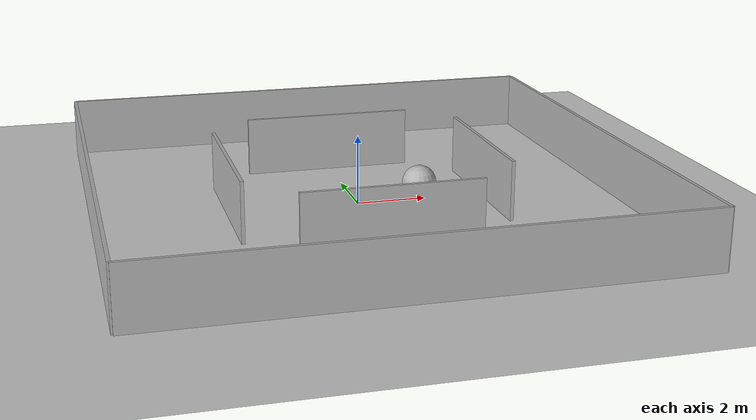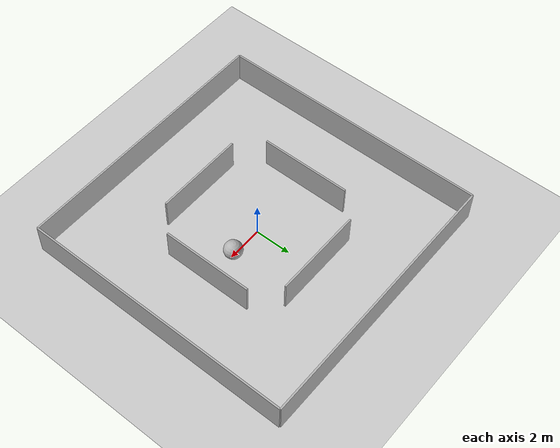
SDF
<?xml version="1.0" ?>
<sdf version='1.9'>
  <world name='default'>
    <physics name='1ms' type='ignored'>
      <max_step_size>0.001</max_step_size>
      <real_time_factor>1</real_time_factor>
      <real_time_update_rate>1000</real_time_update_rate>
    </physics>
    <plugin name='gz::sim::systems::Physics' filename='ignition-gazebo-physics-system'/>
    <plugin name='gz::sim::systems::UserCommands' filename='ignition-gazebo-user-commands-system'/>
    <plugin name='gz::sim::systems::SceneBroadcaster' filename='ignition-gazebo-scene-broadcaster-system'/>
    <plugin name='gz::sim::systems::Contact' filename='ignition-gazebo-contact-system'/>
    <plugin
      filename="gz-sim-sensors-system"
      name="gz::sim::systems::Sensors">
      <render_engine>ogre2</render_engine>
    </plugin>
    <gravity>0 0 -9.8</gravity>
    <magnetic_field>6e-06 2.3e-05 -4.2e-05</magnetic_field>
    <atmosphere type='adiabatic'/>
    <scene>
      <ambient>0.4 0.4 0.4 1</ambient>
      <background>0.7 0.7 0.7 1</background>
      <shadows>true</shadows>
    </scene>
    <model name='ground_plane'>
      <static>true</static>
      <link name='link'>
        <collision name='collision'>
          <geometry>
            <plane>
              <normal>0 0 1</normal>
              <size>100 100</size>
            </plane>
          </geometry>
          <surface>
            <friction>
              <ode/>
            </friction>
            <bounce/>
            <contact/>
          </surface>
        </collision>
        <visual name='visual'>
          <geometry>
            <plane>
              <normal>0 0 1</normal>
              <size>100 100</size>
            </plane>
          </geometry>
          <material>
            <ambient>0.8 0.8 0.8 1</ambient>
            <diffuse>0.8 0.8 0.8 1</diffuse>
            <specular>0.8 0.8 0.8 1</specular>
          </material>
        </visual>
        <pose>0 0 0 0 -0 0</pose>
        <inertial>
          <pose>0 0 0 0 -0 0</pose>
          <mass>1</mass>
          <inertia>
            <ixx>1</ixx>
            <ixy>0</ixy>
            <ixz>0</ixz>
            <iyy>1</iyy>
            <iyz>0</iyz>
            <izz>1</izz>
          </inertia>
        </inertial>
        <enable_wind>false</enable_wind>
      </link>
      <pose>0 0 0 0 -0 0</pose>
      <self_collide>false</self_collide>
    </model>
    <model name='wall1'>
      <pose>-3.75 0 0.5 0 -0 0</pose>
      <link name='box_link'>
        <inertial>
          <inertia>
            <ixx>0.16666</ixx>
            <ixy>0</ixy>
            <ixz>0</ixz>
            <iyy>0.16666</iyy>
            <iyz>0</iyz>
            <izz>0.16666</izz>
          </inertia>
          <mass>1</mass>
          <pose>0 0 0 0 -0 0</pose>
        </inertial>
        <collision name='wall1_collision'>
          <geometry>
            <box>
              <size>0.1 5 2.4</size>
            </box>
          </geometry>
          <surface>
            <friction>
              <ode/>
            </friction>
            <bounce/>
            <contact/>
          </surface>
        </collision>
        <visual name='wall1_visual'>
          <geometry>
            <box>
              <size>0.1 5 2.4</size>
            </box>
          </geometry>
          <material>
            <ambient>0.3 0.3 0.3 1</ambient>
            <diffuse>0.7 0.7 0.7 1</diffuse>
            <specular>1 1 1 1</specular>
          </material>
        </visual>
        <pose>0 0 0 0 -0 0</pose>
        <enable_wind>false</enable_wind>
      </link>
      <static>false</static>
      <self_collide>false</self_collide>
    </model>
    <model name='wall2'>
      <pose>3.75 0 0.5 0 -0 0</pose>
      <link name='box_link'>
        <inertial>
          <inertia>
            <ixx>0.16666</ixx>
            <ixy>0</ixy>
            <ixz>0</ixz>
            <iyy>0.16666</iyy>
            <iyz>0</iyz>
            <izz>0.16666</izz>
          </inertia>
          <mass>1</mass>
          <pose>0 0 0 0 -0 0</pose>
        </inertial>
        <collision name='wall2_collision'>
          <geometry>
            <box>
              <size>0.1 5 2.4</size>
            </box>
          </geometry>
          <surface>
            <friction>
              <ode/>
            </friction>
            <bounce/>
            <contact/>
          </surface>
        </collision>
        <visual name='wall2_visual'>
          <geometry>
            <box>
              <size>0.1 5 2.4</size>
            </box>
          </geometry>
          <material>
            <ambient>0.3 0.3 0.3 1</ambient>
            <diffuse>0.7 0.7 0.7 1</diffuse>
            <specular>1 1 1 1</specular>
          </material>
        </visual>
        <pose>0 0 0 0 -0 0</pose>
        <enable_wind>false</enable_wind>
      </link>
      <static>false</static>
      <self_collide>false</self_collide>
    </model>
    <model name='wall3'>
      <pose>0 -3.75 0.5 0 -0 1.5708</pose>
      <link name='box_link'>
        <inertial>
          <inertia>
            <ixx>0.16666</ixx>
            <ixy>0</ixy>
            <ixz>0</ixz>
            <iyy>0.16666</iyy>
            <iyz>0</iyz>
            <izz>0.16666</izz>
          </inertia>
          <mass>1</mass>
          <pose>0 0 0 0 -0 0</pose>
        </inertial>
        <collision name='wall3_collision'>
          <geometry>
            <box>
              <size>0.1 5 2.4</size>
            </box>
          </geometry>
          <surface>
            <friction>
              <ode/>
            </friction>
            <bounce/>
            <contact/>
          </surface>
        </collision>
        <visual name='wall3_visual'>
          <geometry>
            <box>
              <size>0.1 5 2.4</size>
            </box>
          </geometry>
          <material>
            <ambient>0.3 0.3 0.3 1</ambient>
            <diffuse>0.7 0.7 0.7 1</diffuse>
            <specular>1 1 1 1</specular>
          </material>
        </visual>
        <pose>0 0 0 0 -0 0</pose>
        <enable_wind>false</enable_wind>
      </link>
      <static>false</static>
      <self_collide>false</self_collide>
    </model>
    <model name='wall4'>
      <pose>0 3.75 0.5 0 -0 1.5708</pose>
      <link name='box_link'>
        <inertial>
          <inertia>
            <ixx>0.16666</ixx>
            <ixy>0</ixy>
            <ixz>0</ixz>
            <iyy>0.16666</iyy>
            <iyz>0</iyz>
            <izz>0.16666</izz>
          </inertia>
          <mass>1</mass>
          <pose>0 0 0 0 -0 0</pose>
        </inertial>
        <collision name='box_collision'>
          <geometry>
            <box>
              <size>0.1 5 2.4</size>
            </box>
          </geometry>
          <surface>
            <friction>
              <ode/>
            </friction>
            <bounce/>
            <contact/>
          </surface>
        </collision>
        <visual name='box_visual'>
          <geometry>
            <box>
              <size>0.1 5 2.4</size>
            </box>
          </geometry>
          <material>
            <ambient>0.3 0.3 0.3 1</ambient>
            <diffuse>0.7 0.7 0.7 1</diffuse>
            <specular>1 1 1 1</specular>
          </material>
        </visual>
        <pose>0 0 0 0 -0 0</pose>
        <enable_wind>false</enable_wind>
      </link>
      <static>false</static>
      <self_collide>false</self_collide>
    </model>
    <model name='extern_wall1'>
      <pose>7.5 0 0.5 0 -0 0</pose>
      <link name='box_link'>
        <inertial>
          <inertia>
            <ixx>0.16666</ixx>
            <ixy>0</ixy>
            <ixz>0</ixz>
            <iyy>0.16666</iyy>
            <iyz>0</iyz>
            <izz>0.16666</izz>
          </inertia>
          <mass>1</mass>
          <pose>0 0 0 0 -0 0</pose>
        </inertial>
        <collision name='extern_wall1_collision'>
          <geometry>
            <box>
              <size>0.1 15 2.4</size>
            </box>
          </geometry>
          <surface>
            <friction>
              <ode/>
            </friction>
            <bounce/>
            <contact/>
          </surface>
        </collision>
        <visual name='extern_wall1_visual'>
          <geometry>
            <box>
              <size>0.1 15 2.4</size>
            </box>
          </geometry>
          <material>
            <ambient>0.3 0.3 0.3 1</ambient>
            <diffuse>0.7 0.7 0.7 1</diffuse>
            <specular>1 1 1 1</specular>
          </material>
        </visual>
        <pose>0 0 0 0 -0 0</pose>
        <enable_wind>false</enable_wind>
      </link>
      <static>false</static>
      <self_collide>false</self_collide>
    </model>
    <model name='extern_wall2'>
      <pose>-7.5 0 0.5 0 -0 0</pose>
      <link name='box_link'>
        <inertial>
          <inertia>
            <ixx>0.16666</ixx>
            <ixy>0</ixy>
            <ixz>0</ixz>
            <iyy>0.16666</iyy>
            <iyz>0</iyz>
            <izz>0.16666</izz>
          </inertia>
          <mass>1</mass>
          <pose>0 0 0 0 -0 0</pose>
        </inertial>
        <collision name='extern_wall2_collision'>
          <geometry>
            <box>
              <size>0.1 15 2.4</size>
            </box>
          </geometry>
          <surface>
            <friction>
              <ode/>
            </friction>
            <bounce/>
            <contact/>
          </surface>
        </collision>
        <visual name='extern_wall2_visual'>
          <geometry>
            <box>
              <size>0.1 15 2.4</size>
            </box>
          </geometry>
          <material>
            <ambient>0.3 0.3 0.3 1</ambient>
            <diffuse>0.7 0.7 0.7 1</diffuse>
            <specular>1 1 1 1</specular>
          </material>
        </visual>
        <pose>0 0 0 0 -0 0</pose>
        <enable_wind>false</enable_wind>
      </link>
      <static>false</static>
      <self_collide>false</self_collide>
    </model>
    <model name='extern_wall3'>
      <pose>0 7.5 0.5 0 -0 1.5708</pose>
      <link name='box_link'>
        <inertial>
          <inertia>
            <ixx>0.16666</ixx>
            <ixy>0</ixy>
            <ixz>0</ixz>
            <iyy>0.16666</iyy>
            <iyz>0</iyz>
            <izz>0.16666</izz>
          </inertia>
          <mass>1</mass>
          <pose>0 0 0 0 -0 0</pose>
        </inertial>
        <collision name='extern_wall3_collision'>
          <geometry>
            <box>
              <size>0.1 15 2.4</size>
            </box>
          </geometry>
          <surface>
            <friction>
              <ode/>
            </friction>
            <bounce/>
            <contact/>
          </surface>
        </collision>
        <visual name='extern_wall3_visual'>
          <geometry>
            <box>
              <size>0.1 15 2.4</size>
            </box>
          </geometry>
          <material>
            <ambient>0.3 0.3 0.3 1</ambient>
            <diffuse>0.7 0.7 0.7 1</diffuse>
            <specular>1 1 1 1</specular>
          </material>
        </visual>
        <pose>0 0 0 0 -0 0</pose>
        <enable_wind>false</enable_wind>
      </link>
      <static>false</static>
      <self_collide>false</self_collide>
    </model>
    <model name='extern_wall4'>
      <pose>0 -7.5 0.5 0 -0 1.5708</pose>
      <link name='box_link'>
        <inertial>
          <inertia>
            <ixx>0.16666</ixx>
            <ixy>0</ixy>
            <ixz>0</ixz>
            <iyy>0.16666</iyy>
            <iyz>0</iyz>
            <izz>0.16666</izz>
          </inertia>
          <mass>1</mass>
          <pose>0 0 0 0 -0 0</pose>
        </inertial>
        <collision name='extern_wall4_collision'>
          <geometry>
            <box>
              <size>0.1 15 2.4</size>
            </box>
          </geometry>
          <surface>
            <friction>
              <ode/>
            </friction>
            <bounce/>
            <contact/>
          </surface>
        </collision>
        <visual name='extern_wall4_visual'>
          <geometry>
            <box>
              <size>0.1 15 2.4</size>
            </box>
          </geometry>
          <material>
            <ambient>0.3 0.3 0.3 1</ambient>
            <diffuse>0.7 0.7 0.7 1</diffuse>
            <specular>1 1 1 1</specular>
          </material>
        </visual>
        <pose>0 0 0 0 -0 0</pose>
        <enable_wind>false</enable_wind>
      </link>
      <static>false</static>
      <self_collide>false</self_collide>
    </model>
    <model name='sphere'>
      <pose>1.83862 -0.006986 0.5 0 -0 0</pose>
      <link name='sphere_link'>
        <inertial>
          <inertia>
            <ixx>0.10000000000000001</ixx>
            <ixy>0</ixy>
            <ixz>0</ixz>
            <iyy>0.10000000000000001</iyy>
            <iyz>0</iyz>
            <izz>0.10000000000000001</izz>
          </inertia>
          <mass>1</mass>
          <pose>0 0 0 0 -0 0</pose>
        </inertial>
        <collision name='sphere_collision'>
          <geometry>
            <sphere>
              <radius>0.5</radius>
            </sphere>
          </geometry>
          <surface>
            <friction>
              <ode/>
            </friction>
            <bounce/>
            <contact/>
          </surface>
        </collision>
        <visual name='sphere_visual'>
          <geometry>
            <sphere>
              <radius>0.5</radius>
            </sphere>
          </geometry>
          <material>
            <ambient>0.3 0.3 0.3 1</ambient>
            <diffuse>0.7 0.7 0.7 1</diffuse>
            <specular>1 1 1 1</specular>
          </material>
        </visual>
        <pose>0 0 0 0 -0 0</pose>
        <enable_wind>false</enable_wind>
      </link>
      <static>false</static>
      <self_collide>false</self_collide>
    </model>
    <light name='sun' type='directional'>
      <pose>0 0 10 0 -0 0</pose>
      <cast_shadows>true</cast_shadows>
      <intensity>1</intensity>
      <direction>-0.5 0.1 -0.9</direction>
      <diffuse>0.8 0.8 0.8 1</diffuse>
      <specular>0.2 0.2 0.2 1</specular>
      <attenuation>
        <range>1000</range>
        <linear>0.01</linear>
        <constant>0.90000000000000002</constant>
        <quadratic>0.001</quadratic>
      </attenuation>
      <spot>
        <inner_angle>0</inner_angle>
        <outer_angle>0</outer_angle>
        <falloff>0</falloff>
      </spot>
    </light>
  </world>
</sdf>
